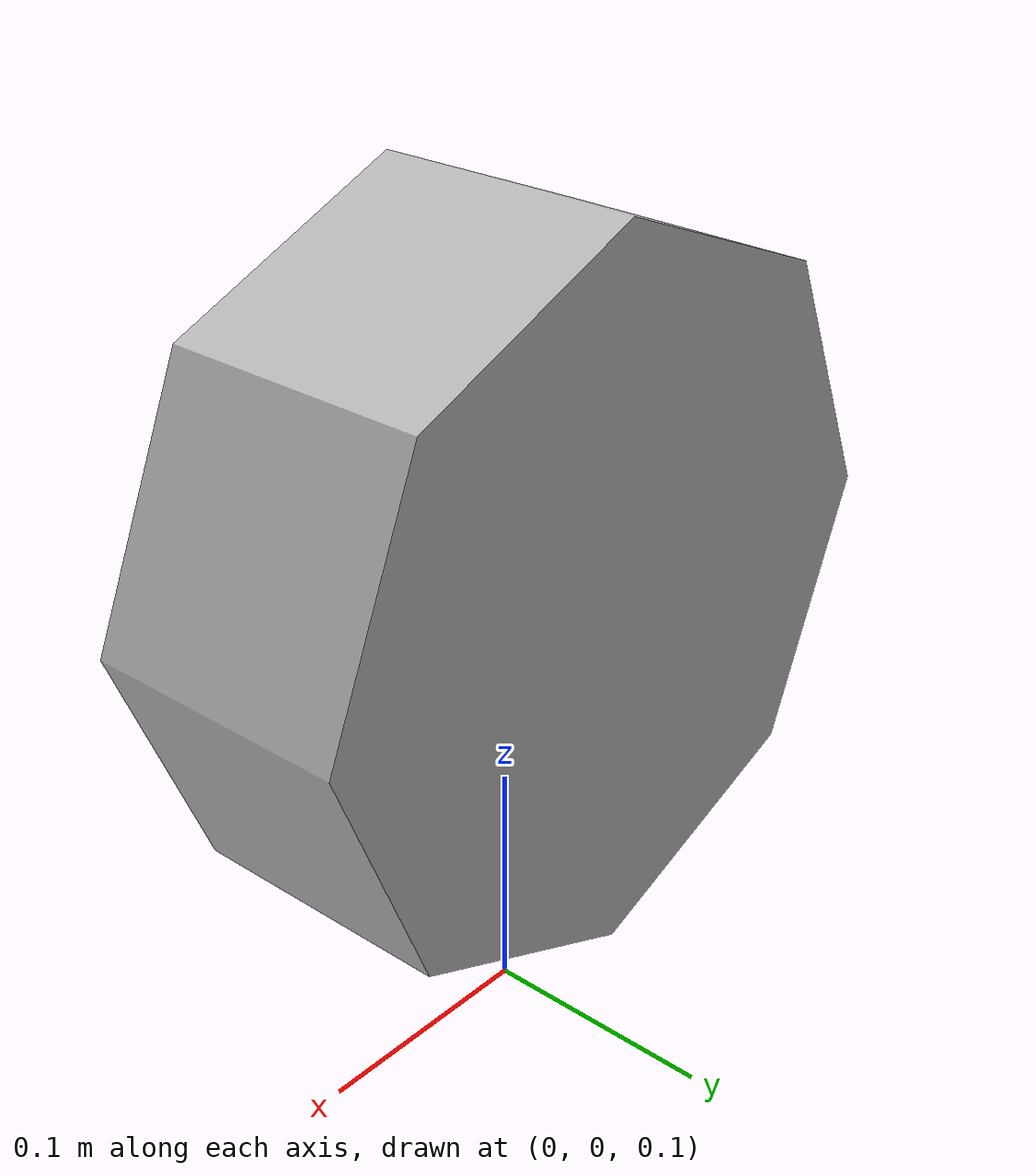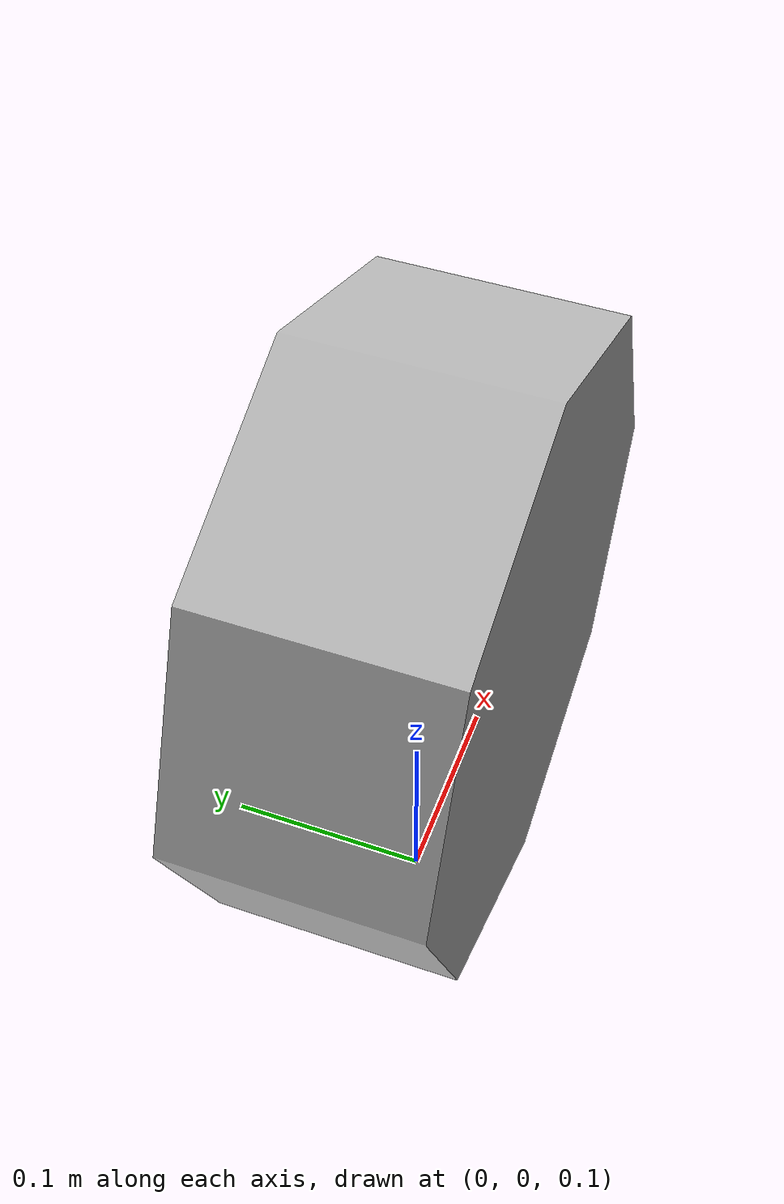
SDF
<?xml version="1.0" ?>
<sdf version="1.5">
<model name="target">
  <plugin name='SetPosePlugin' filename='libSetPosePlugin.so'/>
  <plugin name='GetPosePlugin' filename='libGetPosePlugin.so'/>
  <static>true</static>
  <link name="target_link">

  <visual name="target">
    <pose>0 0 0.3 0 0 0</pose>
    <geometry>
      <mesh><uri>model://target/meshes/target.dae</uri><scale>1 1 1</scale></mesh>
    </geometry>
    <plugin name="model_visual_plugin" filename="libVisualBboxPlugin.so"/>
  </visual>

  <collision name="target">
    <pose>0 0 0.3 0 0 0</pose>
    <geometry>
      <mesh><uri>model://target/meshes/target.dae</uri><scale>1 1 1</scale></mesh>
    </geometry>
  </collision>

  </link>
</model>
</sdf>
